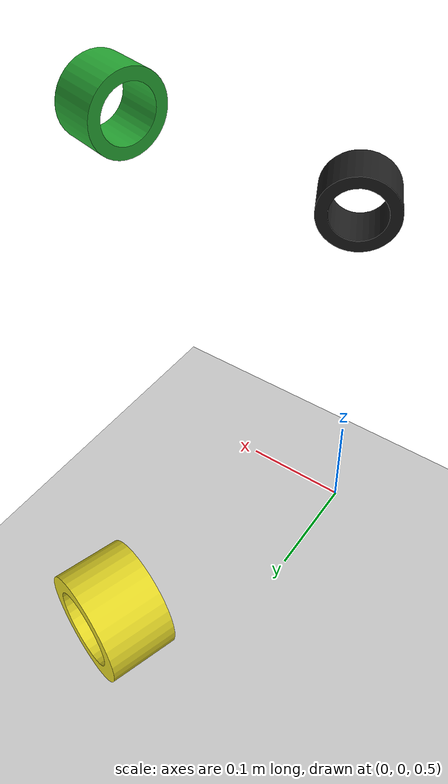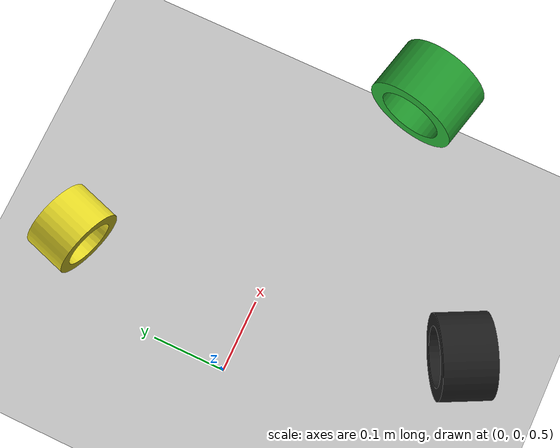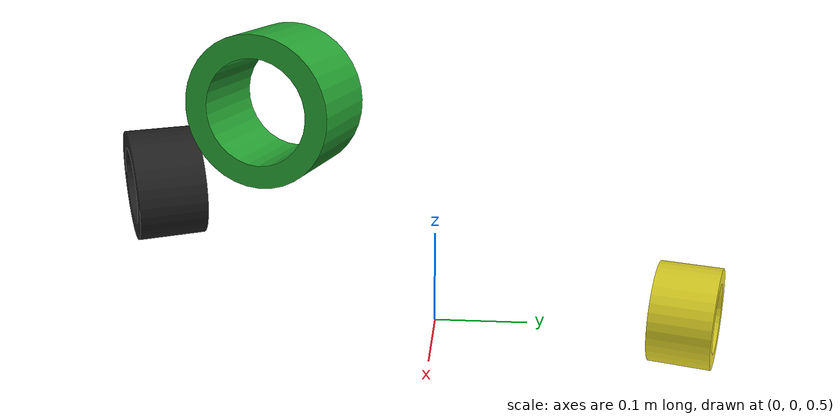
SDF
<?xml version="1.0" encoding="UTF-8"?>
<sdf version="1.4">
  <world name="default">
    <!-- *********************INITIAL POSE OF THE CAMERA***************************** -->
		<gui>
      <camera name="main_cam">
        <pose>-0.68 -1.04 1.63 0 0.77 0.75</pose>
      </camera>
    </gui>

    <!-- *********************GROUND AND SUN***************************** -->
    <include>
      <uri>model://ground_plane</uri>
    </include>

    <include>
      <uri>model://sun</uri>
    </include>

    <!-- **********************TAGS**************************** -->
    <include>
      <uri>model://yellow_tag</uri>
      <pose>0.08 0.252 0.55 0 0 1.26</pose>
      <name>yellow_tag</name>
    </include>

    <include>
      <uri>model://green_tag</uri>
      <pose>0.341 -0.084 0.811 0 0 -0.24</pose>
      <name>green_tag</name>
    </include>

    <include>
      <uri>model://black_tag</uri>
      <pose>0.123 -0.243 0.688 0 0 -1.1</pose>
      <name>black_tag</name>
    </include>
  </world>
</sdf>

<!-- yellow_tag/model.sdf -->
<sdf version="1.4">
  <model name="box">
    <static>true</static>
    <link name="box">
      <visual name="visual_box">
        <pose>0 0 0 0 1.57 0</pose>
        <geometry>
          <mesh>
            <uri>model://yellow_tag/mesh/Cylinder_hole.stl</uri>
            <scale>0.001 0.001 0.001</scale>
          </mesh>
        </geometry>

        <material>
          <script>
              <uri>file://media/materials/scripts/gazebo.material</uri>
              <name>Gazebo/Yellow</name>
            </script>
        </material>
      </visual>
    </link>
  </model>
</sdf>

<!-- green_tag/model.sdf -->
<sdf version="1.4">
  <model name="box">
    <static>true</static>
    <link name="box">
      <visual name="visual_box">
        <pose>0 0 0 0 1.57 0</pose>
        <geometry>
          <mesh>
            <uri>model://green_tag/mesh/Cylinder_hole.stl</uri>
            <scale>0.001 0.001 0.001</scale>
          </mesh>
        </geometry>

        <material>
          <script>
              <uri>file://media/materials/scripts/gazebo.material</uri>
              <name>Gazebo/Green</name>
            </script>
        </material>
      </visual>
    </link>
  </model>
</sdf>

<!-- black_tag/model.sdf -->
<sdf version="1.4">
  <model name="box">
    <static>true</static>
    <link name="box">
      <visual name="visual_box">
        <pose>0 0 0 0 1.57 0</pose>
        <geometry>
          <mesh>
            <uri>model://black_tag/mesh/Cylinder_hole.stl</uri>
            <scale>0.001 0.001 0.001</scale>
          </mesh>
        </geometry>

        <material>
          <script>
              <uri>file://media/materials/scripts/gazebo.material</uri>
              <name>Gazebo/Black</name>
            </script>
        </material>
      </visual>
    </link>
  </model>
</sdf>
